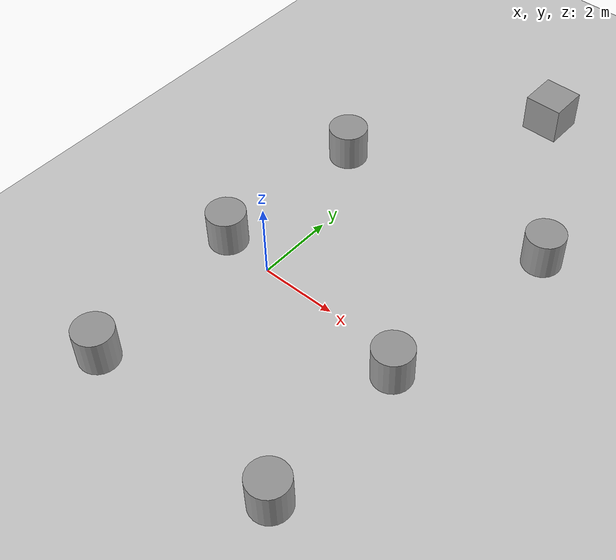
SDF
<sdf version="1.6">
 <world name="default">
  <model name="ground_plane">
   <static>1</static>
   <link name="link">
    <collision name="collision">
     <geometry><plane><normal>0 0 1</normal><size>100 100</size></plane></geometry>
     <surface><friction><ode><mu>100</mu><mu2>50</mu2></ode></friction></surface>
    </collision>
    <visual name="visual">
     <cast_shadows>0</cast_shadows>
     <geometry><plane><normal>0 0 1</normal><size>100 100</size></plane></geometry>
     <material>
      <script><uri>file://media/materials/scripts/gazebo.material</uri><name>Gazebo/Grey</name></script>
     </material>
    </visual>
   </link>
  </model>
  <light name="sun" type="directional">
   <pose>0 0 10 0 -0 0</pose>
   <diffuse>0.8 0.8 0.8 1</diffuse>
   <specular>0.1 0.1 0.1 1</specular>
   <attenuation>
    <range>1000</range>
    <constant>0.9</constant>
    <linear>0.01</linear>
    <quadratic>0.001</quadratic>
   </attenuation>
   <direction>-0.5 0.5 -1</direction>
  </light>
  <gravity>0 0 -9.8</gravity>
  <magnetic_field>6e-06 2.3e-05 -4.2e-05</magnetic_field>
  <atmosphere type="adiabatic"/>
  <physics name="default_physics" default="0" type="ode">
   <max_step_size>0.001</max_step_size>
   <real_time_factor>1</real_time_factor>
   <real_time_update_rate>1000</real_time_update_rate>
  </physics>
  <scene><ambient>0.4 0.4 0.4 1</ambient><background>0.7 0.7 0.7 1</background><shadows>1</shadows></scene>
  <spherical_coordinates>
   <surface_model>EARTH_WGS84</surface_model>
   <latitude_deg>0</latitude_deg>
   <longitude_deg>0</longitude_deg>
   <elevation>0</elevation>
   <heading_deg>0</heading_deg>
  </spherical_coordinates>
  <model name="unit_cylinder_0">
   <pose>4.82667 4.48759 0.499993 -3e-06 -4e-06 -0</pose>
   <link name="link">
    <inertial>
     <mass>1</mass>
     <inertia><ixx>0.145833</ixx><ixy>0</ixy><ixz>0</ixz><iyy>0.145833</iyy><iyz>0</iyz><izz>0.125</izz></inertia>
    </inertial>
    <collision name="collision">
     <geometry><cylinder><radius>0.5</radius><length>1</length></cylinder></geometry>
    </collision>
    <visual name="visual">
     <geometry><cylinder><radius>0.5</radius><length>1</length></cylinder></geometry>
     <material>
      <script><name>Gazebo/Grey</name><uri>file://media/materials/scripts/gazebo.material</uri></script>
     </material>
    </visual>
   </link>
  </model>
  <model name="unit_cylinder_1">
   <pose>4.23493 -0.490048 0.499993 -3e-06 -4e-06 -0</pose>
   <link name="link">
    <inertial>
     <mass>1</mass>
     <inertia><ixx>0.145833</ixx><ixy>0</ixy><ixz>0</ixz><iyy>0.145833</iyy><iyz>0</iyz><izz>0.125</izz></inertia>
    </inertial>
    <collision name="collision">
     <geometry><cylinder><radius>0.5</radius><length>1</length></cylinder></geometry>
    </collision>
    <visual name="visual">
     <geometry><cylinder><radius>0.5</radius><length>1</length></cylinder></geometry>
     <material>
      <script><name>Gazebo/Grey</name><uri>file://media/materials/scripts/gazebo.material</uri></script>
     </material>
    </visual>
   </link>
  </model>
  <model name="unit_cylinder_2">
   <pose>4.3819 -4.54727 0.499993 -3e-06 -4e-06 -0</pose>
   <link name="link">
    <inertial>
     <mass>1</mass>
     <inertia><ixx>0.145833</ixx><ixy>0</ixy><ixz>0</ixz><iyy>0.145833</iyy><iyz>0</iyz><izz>0.125</izz></inertia>
    </inertial>
    <collision name="collision">
     <geometry><cylinder><radius>0.5</radius><length>1</length></cylinder></geometry>
    </collision>
    <visual name="visual">
     <geometry><cylinder><radius>0.5</radius><length>1</length></cylinder></geometry>
     <material>
      <script><name>Gazebo/Grey</name><uri>file://media/materials/scripts/gazebo.material</uri></script>
     </material>
    </visual>
   </link>
  </model>
  <model name="unit_cylinder_3">
   <pose>-1.17677 4.35346 0.499997 3e-06 4e-06 -0</pose>
   <link name="link">
    <inertial>
     <mass>1</mass>
     <inertia><ixx>0.145833</ixx><ixy>0</ixy><ixz>0</ixz><iyy>0.145833</iyy><iyz>0</iyz><izz>0.125</izz></inertia>
    </inertial>
    <collision name="collision">
     <geometry><cylinder><radius>0.5</radius><length>1</length></cylinder></geometry>
    </collision>
    <visual name="visual">
     <geometry><cylinder><radius>0.5</radius><length>1</length></cylinder></geometry>
     <material>
      <script><name>Gazebo/Grey</name><uri>file://media/materials/scripts/gazebo.material</uri></script>
     </material>
    </visual>
   </link>
  </model>
  <model name="unit_cylinder_4">
   <pose>-1.40423 0.099948 0.499993 -3e-06 -4e-06 -0</pose>
   <link name="link">
    <inertial>
     <mass>1</mass>
     <inertia><ixx>0.145833</ixx><ixy>0</ixy><ixz>0</ixz><iyy>0.145833</iyy><iyz>0</iyz><izz>0.125</izz></inertia>
    </inertial>
    <collision name="collision">
     <geometry><cylinder><radius>0.5</radius><length>1</length></cylinder></geometry>
    </collision>
    <visual name="visual">
     <geometry><cylinder><radius>0.5</radius><length>1</length></cylinder></geometry>
     <material>
      <script><name>Gazebo/Grey</name><uri>file://media/materials/scripts/gazebo.material</uri></script>
     </material>
    </visual>
   </link>
  </model>
  <model name="unit_cylinder_5">
   <pose>-1.05407 -4.33874 0.499993 -3e-06 -4e-06 -0</pose>
   <link name="link">
    <inertial>
     <mass>1</mass>
     <inertia><ixx>0.145833</ixx><ixy>0</ixy><ixz>0</ixz><iyy>0.145833</iyy><iyz>0</iyz><izz>0.125</izz></inertia>
    </inertial>
    <collision name="collision">
     <geometry><cylinder><radius>0.5</radius><length>1</length></cylinder></geometry>
    </collision>
    <visual name="visual">
     <geometry><cylinder><radius>0.5</radius><length>1</length></cylinder></geometry>
     <material>
      <script><name>Gazebo/Grey</name><uri>file://media/materials/scripts/gazebo.material</uri></script>
     </material>
    </visual>
   </link>
  </model>
  <model name="unit_box_0">
   <pose>2.14847 8.85199 0.5 0 -0 0</pose>
   <link name="link">
    <inertial>
     <mass>1</mass>
     <inertia>
      <ixx>0.166667</ixx>
      <ixy>0</ixy>
      <ixz>0</ixz>
      <iyy>0.166667</iyy>
      <iyz>0</iyz>
      <izz>0.166667</izz>
     </inertia>
    </inertial>
    <collision name="collision"><geometry><box><size>1 1 1</size></box></geometry></collision>
    <visual name="visual">
     <geometry><box><size>1 1 1</size></box></geometry>
     <material>
      <script><name>Gazebo/Grey</name><uri>file://media/materials/scripts/gazebo.material</uri></script>
     </material>
    </visual>
   </link>
  </model>
 </world>
</sdf>
